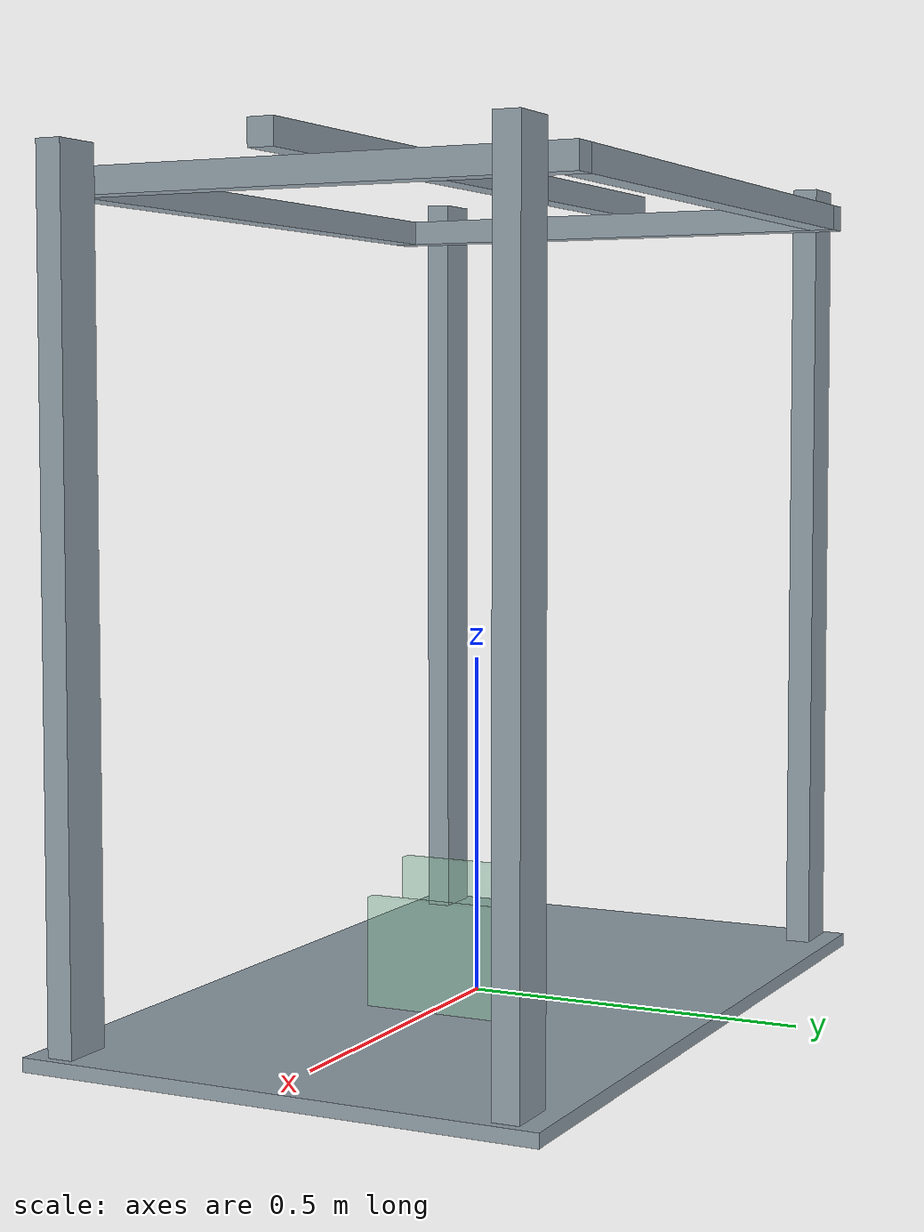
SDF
<?xml version="1.0"?>
<sdf version="1.7">
  <model name="table">
    <link name="table">
      <inertial>
        <mass>1</mass>
        <inertia>
          <ixx>1</ixx>
          <ixy>0</ixy>
          <ixz>0</ixz>
          <iyy>1</iyy>
          <iyz>0</iyz>
          <izz>1</izz>
        </inertia>
      </inertial>
      <visual name="tabletop">
        <pose>0 0 -0.01 0 0 0</pose>
        <geometry>
          <box>
            <size>1.220 0.762 0.02</size>
          </box>
        </geometry>
        <material>
          <diffuse>0.57 0.63 0.67 1.0</diffuse>
        </material>
      </visual>
      <visual name="right_wall">
        <pose>0.15 0 0.08 0 0 0</pose>
        <geometry>
          <box>
            <size>0.02 0.2 0.16</size>
          </box>
        </geometry>
        <material>
          <diffuse>0.57 0.8 0.67 0.5</diffuse>
        </material>
      </visual>
      <visual name="left_wall">
        <pose>-0.15 -0.1 0.08 0 0 0</pose>
        <geometry>
          <box>
            <size>0.02 0.2 0.16</size>
          </box>
        </geometry>
        <material>
          <diffuse>0.57 0.8 0.67 0.5</diffuse>
        </material>
      </visual>
      <visual name="upper_right_post">
        <pose>0.559 0.330 0.61 0 0 0</pose>
        <geometry>
          <box>
            <size>0.0762 0.0381 1.22</size>
          </box>
        </geometry>
        <material>
          <diffuse>0.57 0.63 0.67 1.0</diffuse>
        </material>
      </visual>
      <visual name="upper_left_post">
        <pose>0.559 -0.330 0.61 0 0 0</pose>
        <geometry>
          <box>
            <size>0.0762 0.0381 1.22</size>
          </box>
        </geometry>
        <material>
          <diffuse>0.57 0.63 0.67 1.0</diffuse>
        </material>
      </visual>
      <visual name="lower_right_post">
        <pose>-0.559 0.330  0.61 0 0 0</pose>
        <geometry>
          <box>
            <size>0.0762 0.0381 1.22</size>
          </box>
        </geometry>
        <material>
          <diffuse>0.57 0.63 0.67 1.0</diffuse>
        </material>
      </visual>
      <visual name="lower_left_post">
        <pose>-0.559 -0.330 0.61 0 0 0</pose>
        <geometry>
          <box>
            <size>0.0762 0.0381 1.22</size>
          </box>
        </geometry>
        <material>
          <diffuse>0.57 0.63 0.67 1.0</diffuse>
        </material>
      </visual>
      <visual name="top_left_bar">
        <pose>0 0.371 1.171 0 0 0</pose>
        <geometry>
          <box>
            <size>0.965 0.038 0.038</size>
          </box>
        </geometry>
        <material>
          <diffuse>0.57 0.63 0.67 1.0</diffuse>
        </material>
      </visual>
      <visual name="top_middle_bar">
        <pose>0 0 1.209 0 0 0</pose>
        <geometry>
          <box>
            <size>1.220 0.038 0.038</size>
          </box>
        </geometry>
        <material>
          <diffuse>0.57 0.63 0.67 1.0</diffuse>
        </material>
      </visual>
      <visual name="top_right_bar">
        <pose>0 -0.371 1.171 0 0 0</pose>
        <geometry>
          <box>
            <size>0.965 0.038 0.038</size>
          </box>
        </geometry>
        <material>
          <diffuse>0.57 0.63 0.67 1.0</diffuse>
        </material>
      </visual>
      <visual name="top_back_bar">
        <pose>-0.501 0 1.171 0 0 0</pose>
        <geometry>
          <box>
            <size>0.038 0.78 0.038</size>
          </box>
        </geometry>
        <material>
          <diffuse>0.57 0.63 0.67 1.0</diffuse>
        </material>
      </visual>
      <visual name="top_front_bar">
        <pose>0.501 0 1.171 0 0 0</pose>
        <geometry>
          <box>
            <size>0.038 0.78 0.038</size>
          </box>
        </geometry>
        <material>
          <diffuse>0.57 0.63 0.67 1.0</diffuse>
        </material>
      </visual>
      <collision name="tabletop">
        <pose>0 0 -0.01 0 0 0</pose>
        <geometry>
          <box>
            <size>1.220 0.762 0.02</size>
          </box>
        </geometry>
        <drake:proximity_properties>
          <drake:mu_dynamic>0.3</drake:mu_dynamic>
          <drake:mu_static>0.3</drake:mu_static>
          <drake:mesh_resolution_hint>0.005</drake:mesh_resolution_hint>
          <drake:hydroelastic_modulus>1e5</drake:hydroelastic_modulus>
          <drake:hunt_crossley_dissipation>5.0</drake:hunt_crossley_dissipation>
          <drake:compliant_hydroelastic/>
        </drake:proximity_properties>
      </collision>
      <collision name="right_wall">
        <pose>0.15 0 0.08 0 0 0</pose>
        <geometry>
          <box>
            <size>0.02 0.2 0.16</size>
          </box>
        </geometry>
        <drake:proximity_properties>
          <drake:mu_dynamic>0.3</drake:mu_dynamic>
          <drake:mu_static>0.3</drake:mu_static>
          <drake:mesh_resolution_hint>0.005</drake:mesh_resolution_hint>
          <drake:hydroelastic_modulus>1e4</drake:hydroelastic_modulus>
          <drake:hunt_crossley_dissipation>5.0</drake:hunt_crossley_dissipation>
          <drake:compliant_hydroelastic/>
        </drake:proximity_properties>
      </collision>
      <collision name="left_wall">
        <pose>-0.15 -0.1 0.08 0 0 0</pose>
        <geometry>
          <box>
            <size>0.02 0.2 0.16</size>
          </box>
        </geometry>
        <drake:proximity_properties>
          <drake:mu_dynamic>0.3</drake:mu_dynamic>
          <drake:mu_static>0.3</drake:mu_static>
          <drake:mesh_resolution_hint>0.005</drake:mesh_resolution_hint>
          <drake:hydroelastic_modulus>1e4</drake:hydroelastic_modulus>
          <drake:hunt_crossley_dissipation>5.0</drake:hunt_crossley_dissipation>
          <drake:compliant_hydroelastic/>
        </drake:proximity_properties>
      </collision>
      <collision name="upper_right_post">
        <pose>0.559 0.330 0.61 0 0 0</pose>
        <geometry>
          <box>
            <size>0.076 0.038 1.219</size>
          </box>
        </geometry>
      </collision>
      <collision name="upper_left_post">
        <pose>0.559 -0.330 0.61 0 0 0</pose>
        <geometry>
          <box>
            <size>0.076 0.038 1.219</size>
          </box>
        </geometry>
      </collision>
      <collision name="lower_right_post">
        <pose>-0.559 0.330  0.61 0 0 0</pose>
        <geometry>
          <box>
            <size>0.076 0.038 1.219</size>
          </box>
        </geometry>
      </collision>
      <collision name="lower_left_post">
        <pose>-0.559 -0.330 0.61 0 0 0</pose>
        <geometry>
          <box>
            <size>0.076 0.038 1.219</size>
          </box>
        </geometry>
      </collision>
      <collision name="top_left_bar">
        <pose>0 0.371 1.171 0 0 0</pose>
        <geometry>
          <box>
            <size>0.964 0.037 0.037</size>
          </box>
        </geometry>
      </collision>
      <collision name="top_middle_bar">
        <pose>0 0 1.209 0 0 0</pose>
        <geometry>
          <box>
            <size>1.219 0.037 0.037</size>
          </box>
        </geometry>
      </collision>
      <collision name="top_right_bar">
        <pose>0 -0.371 1.171 0 0 0</pose>
        <geometry>
          <box>
            <size>0.964 0.037 0.037</size>
          </box>
        </geometry>
      </collision>
      <collision name="top_back_bar">
        <pose>-0.501 0 1.171 0 0 0</pose>
        <geometry>
          <box>
            <size>0.037 0.779 0.037</size>
          </box>
        </geometry>
      </collision>
      <collision name="top_front_bar">
        <pose>0.501 0 1.171 0 0 0</pose>
        <geometry>
          <box>
            <size>0.037 0.779 0.037</size>
          </box>
        </geometry>
      </collision>
    </link>
  </model>
</sdf>
